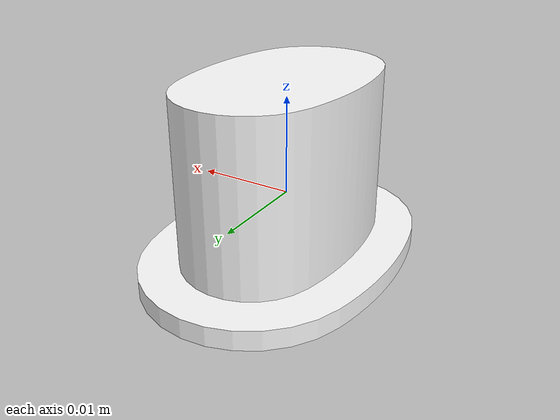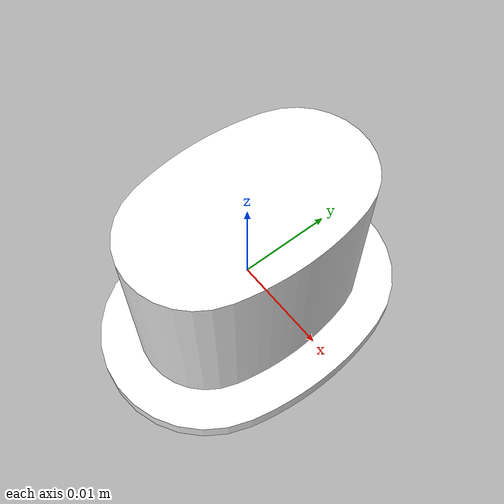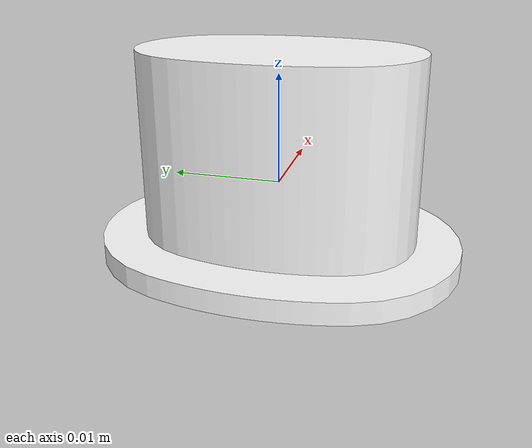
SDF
<?xml version="1.0" ?>
<sdf version="1.5">
	<model name="tophat">
		<static>false</static>
		<link name="link">
			<gravity>true</gravity>
			<enable_wind>true</enable_wind>
			<self_collide>false</self_collide>
			<inertial>
				<mass>0.1</mass>
				<inertia>
					<ixx>0.00006484375</ixx>
					<ixy>0.0</ixy>
					<ixz>0.0</ixz>
					<iyy>0.000162109375</iyy>
					<iyz>0.0</iyz>
					<izz>0.000162109375</izz>
				</inertia>
			</inertial>
			<collision name="collision">
				<geometry>
					<mesh>
						<uri>model://tophat/meshes/tophat.dae</uri>
						<scale>1.75 1.75 2.0</scale>
					</mesh>
				</geometry>
				<friction>
					<ode>
						<mu>0</mu> <!-- Need more calculations -->
						<mu2>0</mu2>
					</ode>
				</friction>
			</collision>

			<visual name="visual">
				<cast_shadows>true</cast_shadows>
				<transparency>0</transparency>
				<geometry>
					<mesh>
						<uri>model://tophat/meshes/tophat.dae</uri>
						<scale>1.75 1.75 2.0</scale>
					</mesh>
				</geometry>
			</visual>
		</link>
	</model>
</sdf>
